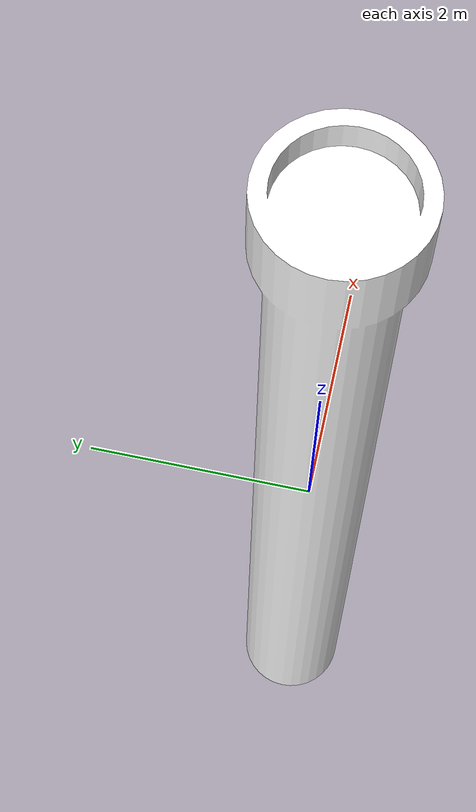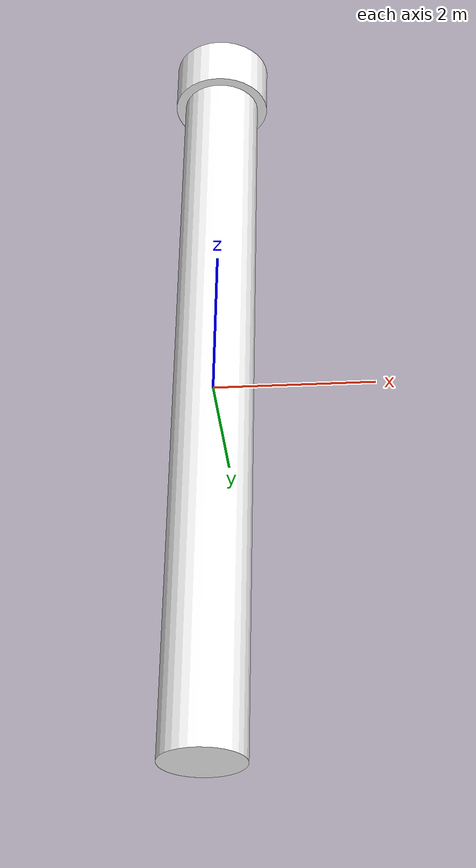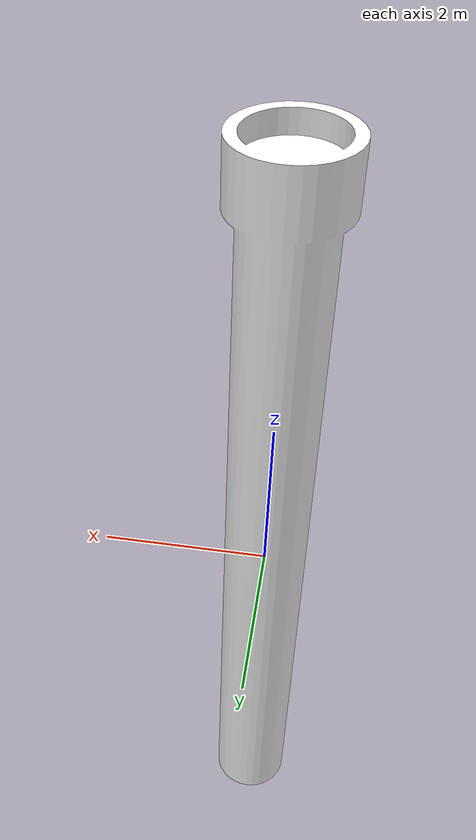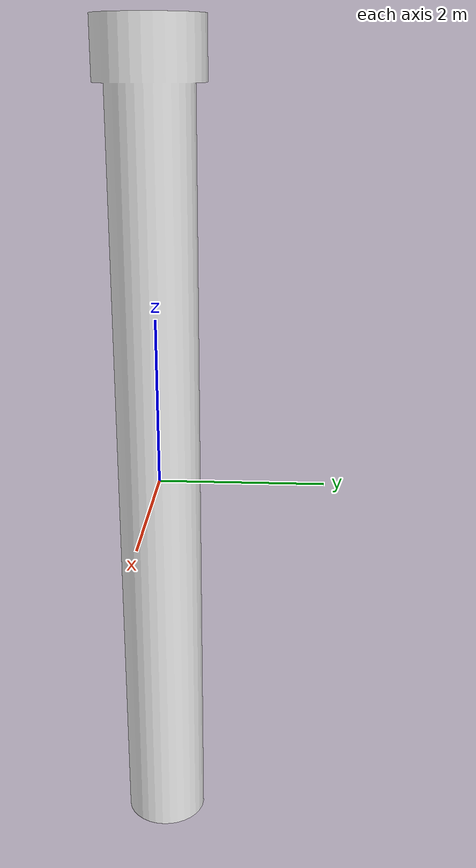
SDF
<?xml version="1.0" ?>
<sdf version="1.5">
  <model name="pipe">
		<static>true</static>

    <link name="link">
      <inertial>
        <pose>0 0 0 0 0 0</pose>
        <mass>0.090</mass>
        <inertia>
          <ixx>0.000988</ixx>
          <ixy>0</ixy>
          <ixz>0</ixz>
          <iyy>0.000988</iyy>
          <iyz>0</iyz>
          <izz>0.000312</izz>
        </inertia>
      </inertial>

      <collision name="collision">
        <pose>0 0 0 0 0 0</pose>
        <geometry>
					<mesh>
						<uri>model://pipe/meshes/pipe.dae</uri>
						<scale>1 1 1</scale>
					</mesh>
        </geometry>
      </collision>

      <visual name="visual">
        <pose>0 0 0 0 0 0</pose>
        <geometry>
					<mesh>
						<uri>model://pipe/meshes/pipe.dae</uri>
						<scale>1 1 1</scale>
					</mesh>
        </geometry>
				<material>
					<!-- Set to green -->
          <ambient>0 1 0 1</ambient>
					<diffuse>1 1 1 1</diffuse>
					<specular>0 0 0 1</specular>
					<emissive>0 0.1 0 1</emissive>
        </material>
      </visual>
    </link>

  </model>
</sdf>
